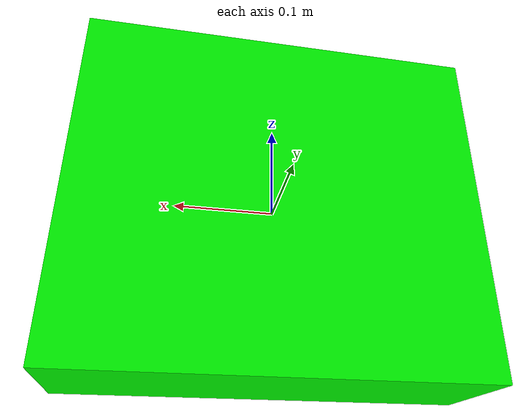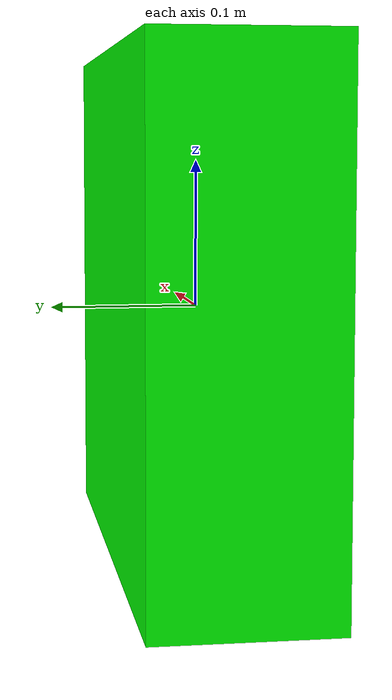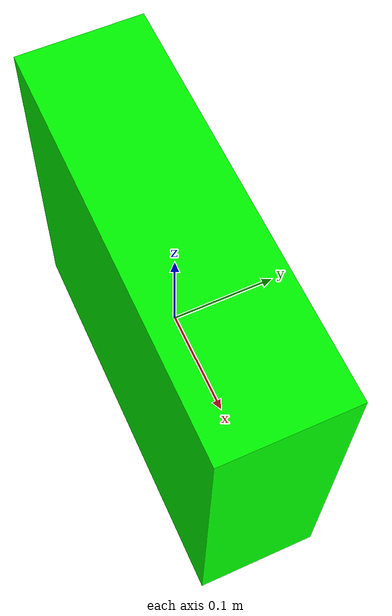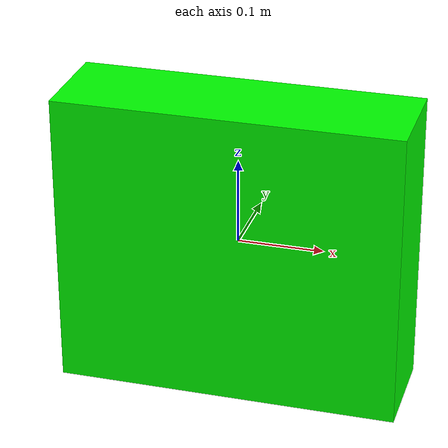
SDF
<?xml version="1.0"?>
<sdf version="1.7">
  <model name="obstacle">
    <static>true</static>
    <link name="box">
      <collision name="collision">
        <geometry>
          <box><size>0.4 0.12 0.35</size></box>
        </geometry>
      </collision>
      <visual name="visual">
        <geometry>
          <box><size>0.4 0.12 0.35</size></box>
        </geometry>
        <material>
          <ambient>0 1 0 1</ambient>
          <diffuse>0 1 0 1</diffuse>
        </material>
      </visual>
    </link>
  </model>
</sdf>
